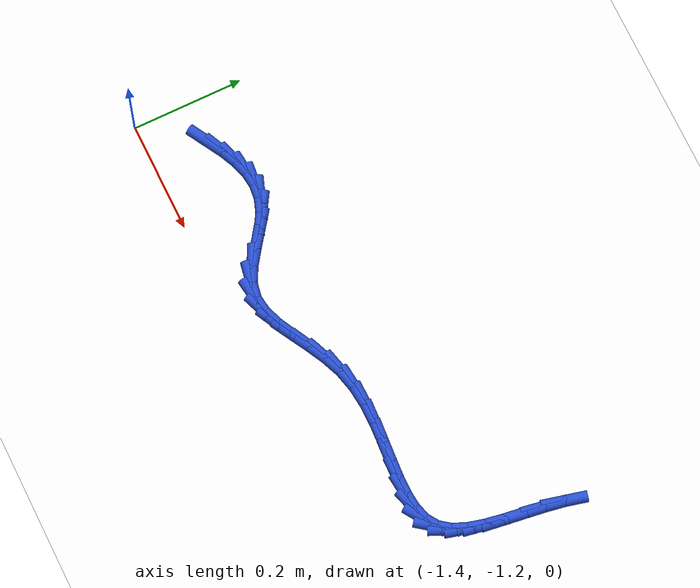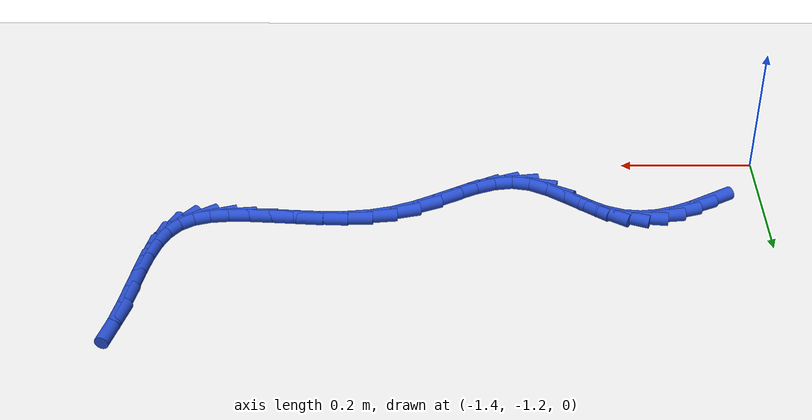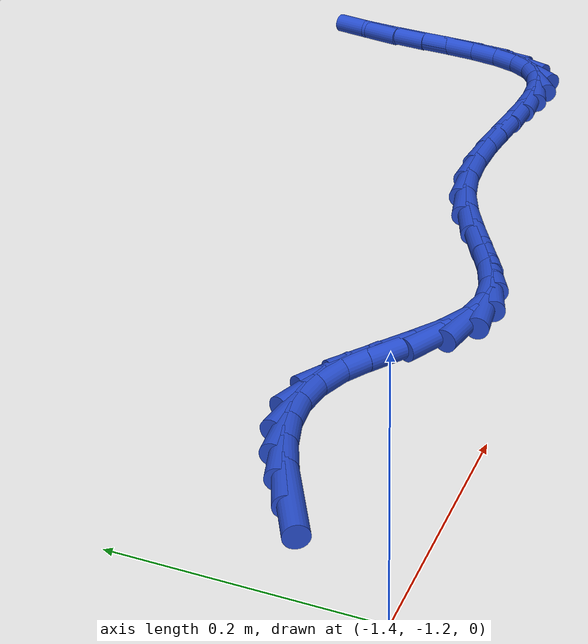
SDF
<sdf version="1.6">
 <world name="default">
  <model name="ground_plane">
   <static>1</static>
   <link name="link">
    <collision name="collision">
     <geometry><plane><normal>0 0 1</normal><size>100 100</size></plane></geometry>
     <surface><friction><ode><mu>100</mu><mu2>50</mu2></ode></friction></surface>
    </collision>
    <visual name="visual">
     <cast_shadows>0</cast_shadows>
     <geometry><plane><normal>0 0 1</normal><size>100 100</size></plane></geometry>
     <material>
      <script><uri>file://media/materials/scripts/gazebo.material</uri><name>Gazebo/WhiteGlow</name></script>
     </material>
    </visual>
   </link>
  </model>
  <model name="line">
   <link name="link_214">
    <pose>-1.319539775326428 -1.0982436046959683 0.01 0 1.57 0.5212047472949217</pose>
    <collision name="collision">
     <geometry><cylinder><radius>0.01</radius><length>0.08</length></cylinder></geometry>
    </collision>
    <visual name="visual">
     <material>
      <script><name>Gazebo/Blue</name><uri>file://media/materials/scripts/gazebo.material</uri></script>
     </material>
     <geometry><cylinder><radius>0.01</radius><length>0.08</length></cylinder></geometry>
    </visual>
   </link>
   <link name="link_215">
    <pose>-1.292074524598043 -1.0824740840686542 0.01 0 1.57 0.43357363395202475</pose>
    <collision name="collision">
     <geometry><cylinder><radius>0.01</radius><length>0.08</length></cylinder></geometry>
    </collision>
    <visual name="visual">
     <material>
      <script><name>Gazebo/Blue</name><uri>file://media/materials/scripts/gazebo.material</uri></script>
     </material>
     <geometry><cylinder><radius>0.01</radius><length>0.08</length></cylinder></geometry>
    </visual>
   </link>
   <link name="link_216">
    <pose>-1.265542062700261 -1.0701907898142484 0.01 0 1.57 0.30090666028524227</pose>
    <collision name="collision">
     <geometry><cylinder><radius>0.01</radius><length>0.08</length></cylinder></geometry>
    </collision>
    <visual name="visual">
     <material>
      <script><name>Gazebo/Blue</name><uri>file://media/materials/scripts/gazebo.material</uri></script>
     </material>
     <geometry><cylinder><radius>0.01</radius><length>0.08</length></cylinder></geometry>
    </visual>
   </link>
   <link name="link_217">
    <pose>-1.2396544949223602 -1.0621571022984466 0.01 0 1.57 0.11776949426753897</pose>
    <collision name="collision">
     <geometry><cylinder><radius>0.01</radius><length>0.08</length></cylinder></geometry>
    </collision>
    <visual name="visual">
     <material>
      <script><name>Gazebo/Blue</name><uri>file://media/materials/scripts/gazebo.material</uri></script>
     </material>
     <geometry><cylinder><radius>0.01</radius><length>0.08</length></cylinder></geometry>
    </visual>
   </link>
   <link name="link_218">
    <pose>-1.2141239265536212 -1.059136401886946 0.01 0 1.57 -0.10780929886963535</pose>
    <collision name="collision">
     <geometry><cylinder><radius>0.01</radius><length>0.08</length></cylinder></geometry>
    </collision>
    <visual name="visual">
     <material>
      <script><name>Gazebo/Blue</name><uri>file://media/materials/scripts/gazebo.material</uri></script>
     </material>
     <geometry><cylinder><radius>0.01</radius><length>0.08</length></cylinder></geometry>
    </visual>
   </link>
   <link name="link_219">
    <pose>-1.1886624628833213 -1.0618920689454414 0.01 0 1.57 -0.34729617411097746</pose>
    <collision name="collision">
     <geometry><cylinder><radius>0.01</radius><length>0.08</length></cylinder></geometry>
    </collision>
    <visual name="visual">
     <material>
      <script><name>Gazebo/Blue</name><uri>file://media/materials/scripts/gazebo.material</uri></script>
     </material>
     <geometry><cylinder><radius>0.01</radius><length>0.08</length></cylinder></geometry>
    </visual>
   </link>
   <link name="link_220">
    <pose>-1.1629822092007402 -1.0711874838396296 0.01 0 1.57 -0.5485960543132906</pose>
    <collision name="collision">
     <geometry><cylinder><radius>0.01</radius><length>0.08</length></cylinder></geometry>
    </collision>
    <visual name="visual">
     <material>
      <script><name>Gazebo/Blue</name><uri>file://media/materials/scripts/gazebo.material</uri></script>
     </material>
     <geometry><cylinder><radius>0.01</radius><length>0.08</length></cylinder></geometry>
    </visual>
   </link>
   <link name="link_221">
    <pose>-1.136845033565392 -1.0871618770528966 0.01 0 1.57 -0.6332270785694382</pose>
    <collision name="collision">
     <geometry><cylinder><radius>0.01</radius><length>0.08</length></cylinder></geometry>
    </collision>
    <visual name="visual">
     <material>
      <script><name>Gazebo/Blue</name><uri>file://media/materials/scripts/gazebo.material</uri></script>
     </material>
     <geometry><cylinder><radius>0.01</radius><length>0.08</length></cylinder></geometry>
    </visual>
   </link>
   <link name="link_222">
    <pose>-1.110274980418539 -1.106666130026992 0.01 0 1.57 -0.6102500348261936</pose>
    <collision name="collision">
     <geometry><cylinder><radius>0.01</radius><length>0.08</length></cylinder></geometry>
    </collision>
    <visual name="visual">
     <material>
      <script><name>Gazebo/Blue</name><uri>file://media/materials/scripts/gazebo.material</uri></script>
     </material>
     <geometry><cylinder><radius>0.01</radius><length>0.08</length></cylinder></geometry>
    </visual>
   </link>
   <link name="link_223">
    <pose>-1.083382126505277 -1.1254720634508513 0.01 0 1.57 -0.4732239572753832</pose>
    <collision name="collision">
     <geometry><cylinder><radius>0.01</radius><length>0.08</length></cylinder></geometry>
    </collision>
    <visual name="visual">
     <material>
      <script><name>Gazebo/Blue</name><uri>file://media/materials/scripts/gazebo.material</uri></script>
     </material>
     <geometry><cylinder><radius>0.01</radius><length>0.08</length></cylinder></geometry>
    </visual>
   </link>
   <link name="link_224">
    <pose>-1.0562765991871654 -1.1393508631560731 0.01 0 1.57 -0.18397824832005566</pose>
    <collision name="collision">
     <geometry><cylinder><radius>0.01</radius><length>0.08</length></cylinder></geometry>
    </collision>
    <visual name="visual">
     <material>
      <script><name>Gazebo/Blue</name><uri>file://media/materials/scripts/gazebo.material</uri></script>
     </material>
     <geometry><cylinder><radius>0.01</radius><length>0.08</length></cylinder></geometry>
    </visual>
   </link>
   <link name="link_225">
    <pose>-1.029049466357101 -1.1444173563160827 0.01 0 1.57 0.13812236878671327</pose>
    <collision name="collision">
     <geometry><cylinder><radius>0.01</radius><length>0.08</length></cylinder></geometry>
    </collision>
    <visual name="visual">
     <material>
      <script><name>Gazebo/Blue</name><uri>file://media/materials/scripts/gazebo.material</uri></script>
     </material>
     <geometry><cylinder><radius>0.01</radius><length>0.08</length></cylinder></geometry>
    </visual>
   </link>
   <link name="link_226">
    <pose>-1.0015803382445847 -1.140598942032584 0.01 0 1.57 0.35606638668100116</pose>
    <collision name="collision">
     <geometry><cylinder><radius>0.01</radius><length>0.08</length></cylinder></geometry>
    </collision>
    <visual name="visual">
     <material>
      <script><name>Gazebo/Blue</name><uri>file://media/materials/scripts/gazebo.material</uri></script>
     </material>
     <geometry><cylinder><radius>0.01</radius><length>0.08</length></cylinder></geometry>
    </visual>
   </link>
   <link name="link_227">
    <pose>-0.9736170522512689 -1.1301988774220864 0.01 0 1.57 0.4716030099995014</pose>
    <collision name="collision">
     <geometry><cylinder><radius>0.01</radius><length>0.08</length></cylinder></geometry>
    </collision>
    <visual name="visual">
     <material>
      <script><name>Gazebo/Blue</name><uri>file://media/materials/scripts/gazebo.material</uri></script>
     </material>
     <geometry><cylinder><radius>0.01</radius><length>0.08</length></cylinder></geometry>
    </visual>
   </link>
   <link name="link_228">
    <pose>-0.9449054493955147 -1.115556414299824 0.01 0 1.57 0.5080697742547448</pose>
    <collision name="collision">
     <geometry><cylinder><radius>0.01</radius><length>0.08</length></cylinder></geometry>
    </collision>
    <visual name="visual">
     <material>
      <script><name>Gazebo/Blue</name><uri>file://media/materials/scripts/gazebo.material</uri></script>
     </material>
     <geometry><cylinder><radius>0.01</radius><length>0.08</length></cylinder></geometry>
    </visual>
   </link>
   <link name="link_229">
    <pose>-0.9151913706956829 -1.099010804481031 0.01 0 1.57 0.4796395956464024</pose>
    <collision name="collision">
     <geometry><cylinder><radius>0.01</radius><length>0.08</length></cylinder></geometry>
    </collision>
    <visual name="visual">
     <material>
      <script><name>Gazebo/Blue</name><uri>file://media/materials/scripts/gazebo.material</uri></script>
     </material>
     <geometry><cylinder><radius>0.01</radius><length>0.08</length></cylinder></geometry>
    </visual>
   </link>
   <link name="link_230">
    <pose>-0.8842206571701358 -1.0829012997809417 0.01 0 1.57 0.38953808524154443</pose>
    <collision name="collision">
     <geometry><cylinder><radius>0.01</radius><length>0.08</length></cylinder></geometry>
    </collision>
    <visual name="visual">
     <material>
      <script><name>Gazebo/Blue</name><uri>file://media/materials/scripts/gazebo.material</uri></script>
     </material>
     <geometry><cylinder><radius>0.01</radius><length>0.08</length></cylinder></geometry>
    </visual>
   </link>
   <link name="link_231">
    <pose>-0.8517391498372346 -1.0695671520147907 0.01 0 1.57 0.2430365868697317</pose>
    <collision name="collision">
     <geometry><cylinder><radius>0.01</radius><length>0.08</length></cylinder></geometry>
    </collision>
    <visual name="visual">
     <material>
      <script><name>Gazebo/Blue</name><uri>file://media/materials/scripts/gazebo.material</uri></script>
     </material>
     <geometry><cylinder><radius>0.01</radius><length>0.08</length></cylinder></geometry>
    </visual>
   </link>
   <link name="link_232">
    <pose>-0.817561459375085 -1.0610932194248668 0.01 0 1.57 0.10550960148826369</pose>
    <collision name="collision">
     <geometry><cylinder><radius>0.01</radius><length>0.08</length></cylinder></geometry>
    </collision>
    <visual name="visual">
     <material>
      <script><name>Gazebo/Blue</name><uri>file://media/materials/scripts/gazebo.material</uri></script>
     </material>
     <geometry><cylinder><radius>0.01</radius><length>0.08</length></cylinder></geometry>
    </visual>
   </link>
   <link name="link_233">
    <pose>-0.7821039970029082 -1.0573381722742545 0.01 0 1.57 0.009132240425595553</pose>
    <collision name="collision">
     <geometry><cylinder><radius>0.01</radius><length>0.08</length></cylinder></geometry>
    </collision>
    <visual name="visual">
     <material>
      <script><name>Gazebo/Blue</name><uri>file://media/materials/scripts/gazebo.material</uri></script>
     </material>
     <geometry><cylinder><radius>0.01</radius><length>0.08</length></cylinder></geometry>
    </visual>
   </link>
   <link name="link_234">
    <pose>-0.7460944201474891 -1.0570093150187438 0.01 0 1.57 -0.050052962248013255</pose>
    <collision name="collision">
     <geometry><cylinder><radius>0.01</radius><length>0.08</length></cylinder></geometry>
    </collision>
    <visual name="visual">
     <material>
      <script><name>Gazebo/Blue</name><uri>file://media/materials/scripts/gazebo.material</uri></script>
     </material>
     <geometry><cylinder><radius>0.01</radius><length>0.08</length></cylinder></geometry>
    </visual>
   </link>
   <link name="link_235">
    <pose>-0.710263000076306 -1.0588042829624276 0.01 0 1.57 -0.07478023449175579</pose>
    <collision name="collision">
     <geometry><cylinder><radius>0.01</radius><length>0.08</length></cylinder></geometry>
    </collision>
    <visual name="visual">
     <material>
      <script><name>Gazebo/Blue</name><uri>file://media/materials/scripts/gazebo.material</uri></script>
     </material>
     <geometry><cylinder><radius>0.01</radius><length>0.08</length></cylinder></geometry>
    </visual>
   </link>
   <link name="link_236">
    <pose>-0.6753400080568338 -1.061420711409398 0.01 0 1.57 -0.06407229919811318</pose>
    <collision name="collision">
     <geometry><cylinder><radius>0.01</radius><length>0.08</length></cylinder></geometry>
    </collision>
    <visual name="visual">
     <material>
      <script><name>Gazebo/Blue</name><uri>file://media/materials/scripts/gazebo.material</uri></script>
     </material>
     <geometry><cylinder><radius>0.01</radius><length>0.08</length></cylinder></geometry>
    </visual>
   </link>
   <link name="link_237">
    <pose>-0.6420557153565486 -1.0635562356637478 0.01 0 1.57 -0.01139370702771695</pose>
    <collision name="collision">
     <geometry><cylinder><radius>0.01</radius><length>0.08</length></cylinder></geometry>
    </collision>
    <visual name="visual">
     <material>
      <script><name>Gazebo/Blue</name><uri>file://media/materials/scripts/gazebo.material</uri></script>
     </material>
     <geometry><cylinder><radius>0.01</radius><length>0.08</length></cylinder></geometry>
    </visual>
   </link>
   <link name="link_238">
    <pose>-0.6111403932429267 -1.0639084910295697 0.01 0 1.57 0.09795164433530405</pose>
    <collision name="collision">
     <geometry><cylinder><radius>0.01</radius><length>0.08</length></cylinder></geometry>
    </collision>
    <visual name="visual">
     <material>
      <script><name>Gazebo/Blue</name><uri>file://media/materials/scripts/gazebo.material</uri></script>
     </material>
     <geometry><cylinder><radius>0.01</radius><length>0.08</length></cylinder></geometry>
    </visual>
   </link>
   <link name="link_239">
    <pose>-0.5833243129834434 -1.0611751128109561 0.01 0 1.57 0.28860132242164893</pose>
    <collision name="collision">
     <geometry><cylinder><radius>0.01</radius><length>0.08</length></cylinder></geometry>
    </collision>
    <visual name="visual">
     <material>
      <script><name>Gazebo/Blue</name><uri>file://media/materials/scripts/gazebo.material</uri></script>
     </material>
     <geometry><cylinder><radius>0.01</radius><length>0.08</length></cylinder></geometry>
    </visual>
   </link>
   <link name="link_240">
    <pose>-0.5593377458455753 -1.0540537363119995 0.01 0 1.57 0.5829728621066361</pose>
    <collision name="collision">
     <geometry><cylinder><radius>0.01</radius><length>0.08</length></cylinder></geometry>
    </collision>
    <visual name="visual">
     <material>
      <script><name>Gazebo/Blue</name><uri>file://media/materials/scripts/gazebo.material</uri></script>
     </material>
     <geometry><cylinder><radius>0.01</radius><length>0.08</length></cylinder></geometry>
    </visual>
   </link>
   <link name="link_241">
    <pose>-0.5399103671306517 -1.041242823433061 0.01 0 1.57 0.9225870624153757</pose>
    <collision name="collision">
     <geometry><cylinder><radius>0.01</radius><length>0.08</length></cylinder></geometry>
    </collision>
    <visual name="visual">
     <material>
      <script><name>Gazebo/Blue</name><uri>file://media/materials/scripts/gazebo.material</uri></script>
     </material>
     <geometry><cylinder><radius>0.01</radius><length>0.08</length></cylinder></geometry>
    </visual>
   </link>
   <link name="link_242">
    <pose>-0.5253528445801487 -1.0220219933892827 0.01 0 1.57 1.1685799428799184</pose>
    <collision name="collision">
     <geometry><cylinder><radius>0.01</radius><length>0.08</length></cylinder></geometry>
    </collision>
    <visual name="visual">
     <material>
      <script><name>Gazebo/Blue</name><uri>file://media/materials/scripts/gazebo.material</uri></script>
     </material>
     <geometry><cylinder><radius>0.01</radius><length>0.08</length></cylinder></geometry>
    </visual>
   </link>
   <link name="link_243">
    <pose>-0.5148230483520381 -0.9972697786668414 0.01 0 1.57 1.3175124401774605</pose>
    <collision name="collision">
     <geometry><cylinder><radius>0.01</radius><length>0.08</length></cylinder></geometry>
    </collision>
    <visual name="visual">
     <material>
      <script><name>Gazebo/Blue</name><uri>file://media/materials/scripts/gazebo.material</uri></script>
     </material>
     <geometry><cylinder><radius>0.01</radius><length>0.08</length></cylinder></geometry>
    </visual>
   </link>
   <link name="link_244">
    <pose>-0.5072823145551995 -0.9681373015836471 0.01 0 1.57 1.3997386563329342</pose>
    <collision name="collision">
     <geometry><cylinder><radius>0.01</radius><length>0.08</length></cylinder></geometry>
    </collision>
    <visual name="visual">
     <material>
      <script><name>Gazebo/Blue</name><uri>file://media/materials/scripts/gazebo.material</uri></script>
     </material>
     <geometry><cylinder><radius>0.01</radius><length>0.08</length></cylinder></geometry>
    </visual>
   </link>
   <link name="link_245">
    <pose>-0.5016919792985125 -0.9357756844576066 0.01 0 1.57 1.4357735852448936</pose>
    <collision name="collision">
     <geometry><cylinder><radius>0.01</radius><length>0.08</length></cylinder></geometry>
    </collision>
    <visual name="visual">
     <material>
      <script><name>Gazebo/Blue</name><uri>file://media/materials/scripts/gazebo.material</uri></script>
     </material>
     <geometry><cylinder><radius>0.01</radius><length>0.08</length></cylinder></geometry>
    </visual>
   </link>
   <link name="link_246">
    <pose>-0.49701337869085627 -0.9013360496066283 0.01 0 1.57 1.4357455130835302</pose>
    <collision name="collision">
     <geometry><cylinder><radius>0.01</radius><length>0.08</length></cylinder></geometry>
    </collision>
    <visual name="visual">
     <material>
      <script><name>Gazebo/Blue</name><uri>file://media/materials/scripts/gazebo.material</uri></script>
     </material>
     <geometry><cylinder><radius>0.01</radius><length>0.08</length></cylinder></geometry>
    </visual>
   </link>
   <link name="link_247">
    <pose>-0.4922078488411102 -0.8659695193486188 0.01 0 1.57 1.402491037102886</pose>
    <collision name="collision">
     <geometry><cylinder><radius>0.01</radius><length>0.08</length></cylinder></geometry>
    </collision>
    <visual name="visual">
     <material>
      <script><name>Gazebo/Blue</name><uri>file://media/materials/scripts/gazebo.material</uri></script>
     </material>
     <geometry><cylinder><radius>0.01</radius><length>0.08</length></cylinder></geometry>
    </visual>
   </link>
   <link name="link_248">
    <pose>-0.48623672585815364 -0.8308272160014866 0.01 0 1.57 1.3332554650322916</pose>
    <collision name="collision">
     <geometry><cylinder><radius>0.01</radius><length>0.08</length></cylinder></geometry>
    </collision>
    <visual name="visual">
     <material>
      <script><name>Gazebo/Blue</name><uri>file://media/materials/scripts/gazebo.material</uri></script>
     </material>
     <geometry><cylinder><radius>0.01</radius><length>0.08</length></cylinder></geometry>
    </visual>
   </link>
  </model>
 </world>
</sdf>
